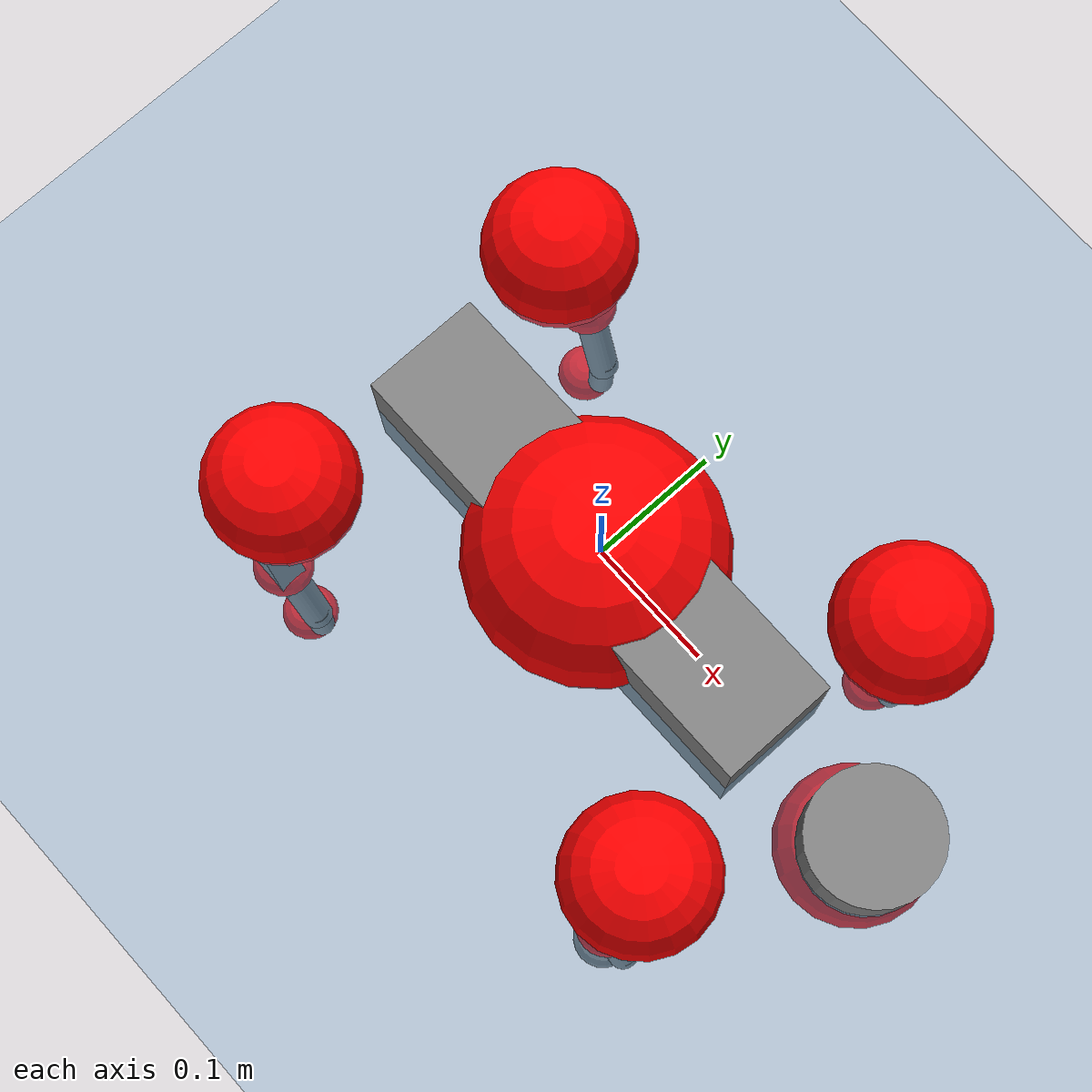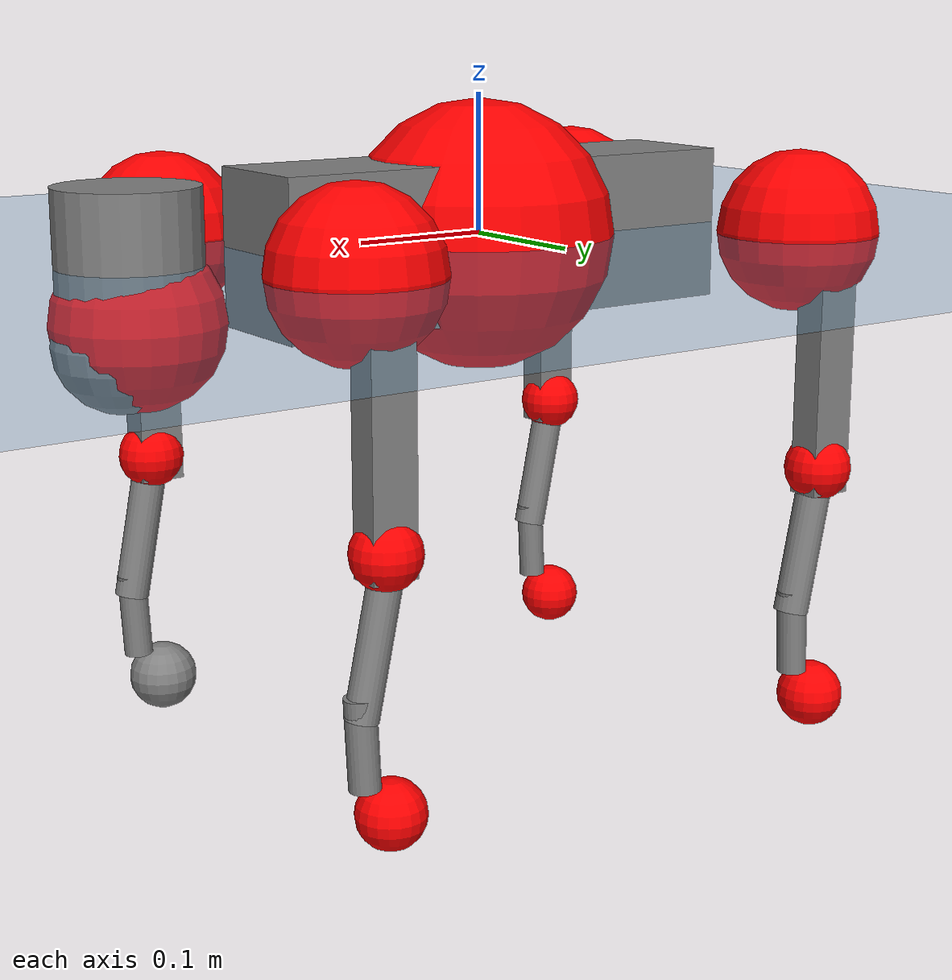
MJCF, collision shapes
<mujoco model="go2">
  <compiler angle="radian" assetdir="assets" balanceinertia="true" inertiafromgeom="false"/>

  <option timestep="0.005" density="1.2" viscosity="2e-05"/>

  <size nkey="1"/>

  <visual>
    <quality shadowsize="8192"/>
    <map shadowclip="0.5"/>
  </visual>

  <default>
    <default class="/">
      <geom contype="0" conaffinity="0" group="1" solref="-1000 -80"/>
      <site size="0.01 0.005 0.005" group="5"/>
      <general forcelimited="true" biastype="affine" gainprm="20" biasprm="0 -20 -0.5"/>
      <default class="go2">
        <joint armature="0.01" damping="0.01" frictionloss="0.2"/>
        <geom condim="1" margin="0.001"/>
        <default class="visual">
          <geom type="mesh" group="2"/>
        </default>
        <default class="collision">
          <geom group="3"/>
          <default class="foot">
            <geom size="0.022 0 0" condim="6" priority="1" friction="0.8 0.02 0.01" solimp="0.015 1 0.022"/>
          </default>
        </default>
        <default class="reward_collision_sphere">
          <geom group="5" rgba="1 0 0 1"/>
        </default>
      </default>
    </default>
  </default>

  <asset>
    <texture type="skybox" colorspace="auto" name="//unnamed_texture_0" builtin="gradient" rgb1="0.95 0.95 0.95" rgb2="0.95 0.95 0.95" width="100" height="600"/>
    <texture type="2d" colorspace="auto" name="texplane" builtin="checker" rgb1="0.345 0.575 0.748" rgb2="0.345 0.575 0.748" markrgb="1 1 1" width="512" height="512"/>
    <material name="MatPlane" class="/" texture="texplane" texuniform="true" texrepeat="2 2" specular="0.9"/>
    <material name="metal" class="/" rgba="0.9 0.95 0.95 1"/>
    <material name="black" class="/" rgba="0 0 0 1"/>
    <material name="white" class="/"/>
    <material name="gray" class="/" rgba="0.671705 0.692426 0.77427 1"/>
    <mesh name="base_0" class="/" file="base_0.obj"/>
    <mesh name="base_1" class="/" file="base_1.obj"/>
    <mesh name="base_2" class="/" file="base_2.obj"/>
    <mesh name="base_3" class="/" file="base_3.obj"/>
    <mesh name="base_4" class="/" file="base_4.obj"/>
    <mesh name="hip_0" class="/" file="hip_0.obj"/>
    <mesh name="hip_1" class="/" file="hip_1.obj"/>
    <mesh name="thigh_0" class="/" file="thigh_0.obj"/>
    <mesh name="thigh_1" class="/" file="thigh_1.obj"/>
    <mesh name="thigh_mirror_0" class="/" file="thigh_mirror_0.obj"/>
    <mesh name="thigh_mirror_1" class="/" file="thigh_mirror_1.obj"/>
    <mesh name="calf_0" class="/" file="calf_0.obj"/>
    <mesh name="calf_1" class="/" file="calf_1.obj"/>
    <mesh name="calf_mirror_0" class="/" file="calf_mirror_0.obj"/>
    <mesh name="calf_mirror_1" class="/" file="calf_mirror_1.obj"/>
    <mesh name="foot" class="/" file="foot.obj"/>
  </asset>

  <worldbody>
    <geom name="floor" class="/" size="100 100 0.125" type="plane" group="0" material="MatPlane"/>
    <light name="toplight_shadow" class="/" pos="0 0 5" dir="0.0990148 0.0990148 -0.990148" type="directional" ambient="0.04 0.04 0.04" diffuse="0.55 0.55 0.55" specular="0.12 0.12 0.12"/>
    <light name="toplight_fill" class="/" pos="0 0 5" dir="0.0990148 0.0990148 -0.990148" type="directional" castshadow="false" ambient="0.04 0.04 0.04" diffuse="0.3 0.3 0.3" specular="0.08 0.08 0.08"/>
    <body name="trunk" childclass="go2" pos="-0.00219155 -0.00276531 -0.00106382" quat="0.999999 -0.00136407 0.000307099 -0.000114512">
      <inertial pos="0.018369 0.000543988 -0.00484107" quat="-0.00261884 0.71179 0.00205202 0.702385" mass="6.36947" diaginertia="0.0895633 0.176918 0.00971469"/>
      <joint name="//unnamed_joint_0" type="free" armature="0" damping="0" frictionloss="0"/>
      <geom name="//unnamed_geom_1" class="visual" material="black" mesh="base_0"/>
      <geom name="//unnamed_geom_2" class="visual" material="black" mesh="base_1"/>
      <geom name="//unnamed_geom_3" class="visual" material="black" mesh="base_2"/>
      <geom name="//unnamed_geom_4" class="visual" material="white" mesh="base_3"/>
      <geom name="//unnamed_geom_5" class="visual" material="gray" mesh="base_4"/>
      <geom name="trunk_1" class="collision" size="0.183198 0.0455318 0.0555147" type="box"/>
      <geom name="trunk_2" class="collision" size="0.0486971 0.0438274" pos="0.275332 0 0.00826978" type="cylinder"/>
      <geom name="trunk_3" class="collision" size="0.0457752" pos="0.28306 0 -0.0496187"/>
      <geom name="//unnamed_geom_9" class="reward_collision_sphere" size="0.0973941"/>
      <geom name="//unnamed_geom_10" class="reward_collision_sphere" size="0.0584365" pos="0.270501 0 -0.037214"/>
      <site name="imu" pos="-0.0236028 0.00402246 0.0354953" size="0.00973941"/>
      <camera name="track" pos="0 -2.25754 0" quat="0.707107 0.707107 0 0" mode="trackcom"/>
      <camera name="ego_camera" pos="0.301416 0 0.037214" quat="-0.5 -0.5 0.5 0.5"/>
      <body name="FL_hip" pos="0.184052 0.0501576 0.00325802" quat="0.999999 -0.000219973 0.000809826 -0.000560525">
        <inertial pos="-0.00709799 0.000517538 -0.00232657" quat="0.4973 0.50019 0.505722 0.496737" mass="0.655853" diaginertia="0.000778451 0.00109462 0.000197091"/>
        <joint name="FL_hip_joint" pos="0 0 0" axis="0.99997 -0.00314779 -0.00707577" range="-1.0382 0.994792" armature="0.0111243" damping="0" frictionloss="0.207889"/>
        <geom name="//unnamed_geom_11" class="visual" material="metal" mesh="hip_0"/>
        <geom name="//unnamed_geom_12" class="visual" material="gray" mesh="hip_1"/>
        <geom name="//unnamed_geom_13" class="collision" size="0.0448013 0.0194788" pos="0 0.0903016 0" quat="0.707107 0.707107 0 0" type="cylinder"/>
        <geom name="//unnamed_geom_14" class="reward_collision_sphere" size="0.0584365" pos="0 0.0790139 0"/>
        <body name="FL_thigh" pos="-0.000999681 0.107503 0.00311437" quat="1 5.15168e-05 -0.00016769 1.821e-05">
          <inertial pos="-0.00147671 -0.0260717 -0.0244452" quat="0.827919 0.0862398 -0.0205392 0.553797" mass="1.07328" diaginertia="0.00508508 0.0107321 0.000337192"/>
          <joint name="FL_thigh_joint" pos="0 0 0" axis="0.0136017 0.999905 0.0023846" stiffness="0.00659049" range="-1.62372 3.54759" armature="0.011169" damping="0" frictionloss="0.213145"/>
          <geom name="//unnamed_geom_15" class="visual" material="metal" mesh="thigh_0"/>
          <geom name="//unnamed_geom_16" class="visual" material="gray" mesh="thigh_1"/>
          <geom name="//unnamed_geom_17" class="collision" size="0.103725 0.0119308 0.016557" pos="0 0 -0.0880732" quat="0.707107 0 0.707107 0" type="box"/>
          <body name="FL_calf" pos="-0.000500529 -0.000517579 -0.175896" quat="0.999999 -0.00118806 -0.000349184 -0.000197557">
            <inertial pos="0.00847585 0.00166541 -0.119591" quat="0.711303 0.0099604 0.00559386 0.702793" mass="0.222658" diaginertia="0.00124544 0.00274431 1.98383e-05"/>
            <joint name="FL_calf_joint" pos="0 0 0" axis="0.000278862 1 0.00026846" stiffness="0.00113034" range="-2.70089 -0.892824" armature="0.00855532" damping="0.00578215" frictionloss="0.205316"/>
            <geom name="//unnamed_geom_18" class="visual" material="gray" mesh="calf_0"/>
            <geom name="//unnamed_geom_19" class="visual" material="black" mesh="calf_1"/>
            <geom name="FL_calf0" class="collision" size="0.0116873 0.0584365" pos="0.00772861 0 -0.0496187" quat="0.994493 0 -0.104807 0" type="cylinder"/>
            <geom name="//unnamed_geom_21" class="collision" size="0.0107134 0.0316531" pos="0.0193215 0 -0.122393" quat="0.999688 0 0.0249974 0" type="cylinder"/>
            <geom name="//unnamed_geom_22" class="visual" pos="0 0 -0.176146" quat="1 0 0 0" material="black" mesh="foot"/>
            <geom name="FL_foot" class="foot" size="0.0188852" pos="-0.00193215 0 -0.176146"/>
            <geom name="//unnamed_geom_24" class="reward_collision_sphere" size="0.0243485"/>
            <geom name="//unnamed_geom_25" class="reward_collision_sphere" size="0.0243485" pos="-0.00193215 0 -0.176146"/>
            <site name="FL_foot" class="foot" pos="-0.00193215 0 -0.176146" size="0.00973941"/>
          </body>
        </body>
      </body>
      <body name="FR_hip" pos="0.187955 -0.0499783 0.0013316" quat="1 6.64567e-05 0.000342957 0.000298301">
        <inertial pos="-0.00232488 -0.00237491 -4.31937e-05" quat="0.498318 0.50581 0.498353 0.497474" mass="0.658209" diaginertia="0.000779515 0.00113887 0.000185834"/>
        <joint name="FR_hip_joint" pos="0 0 0" axis="0.999996 0.00248269 0.00106162" range="-1.00283 1.04973" armature="0.00881463" damping="0.0110545" frictionloss="0.215509"/>
        <geom name="//unnamed_geom_26" class="visual" pos="0 2.62908e-09 1.12767e-07" quat="4.63268e-05 1 0 0" material="metal" mesh="hip_0"/>
        <geom name="//unnamed_geom_27" class="visual" pos="0 4.26206e-09 -2.78915e-07" quat="4.63268e-05 1 0 0" material="gray" mesh="hip_1"/>
        <geom name="//unnamed_geom_28" class="collision" size="0.0448013 0.0194788" pos="0 -0.0903016 0" quat="0.707107 0.707107 0 0" type="cylinder"/>
        <geom name="//unnamed_geom_29" class="reward_collision_sphere" size="0.0584365" pos="0 -0.0790139 0"/>
        <body name="FR_thigh" pos="0.000285961 -0.107236 0.00291459" quat="0.999999 1.86514e-05 0.00116815 0.00053389">
          <inertial pos="-0.00626346 0.0233387 -0.0270238" quat="0.547622 -0.017865 0.0855789 0.832146" mass="1.03055" diaginertia="0.00498723 0.0104051 0.00032469"/>
          <joint name="FR_thigh_joint" pos="0 0 0" axis="0.00680964 -0.999969 -0.00393393" stiffness="0.0038082" range="-3.49369 1.5467" armature="0.00977655" damping="0.0181512" frictionloss="0.208431"/>
          <geom name="//unnamed_geom_30" class="visual" material="metal" mesh="thigh_mirror_0"/>
          <geom name="//unnamed_geom_31" class="visual" material="gray" mesh="thigh_mirror_1"/>
          <geom name="//unnamed_geom_32" class="collision" size="0.103725 0.0119308 0.016557" pos="0 0 -0.0880732" quat="0.707107 0 0.707107 0" type="box"/>
          <body name="FR_calf" pos="0.00247302 -0.00208459 -0.174477" quat="1 3.11396e-05 -3.16885e-06 4.06824e-05">
            <inertial pos="0.00815868 0.00118934 -0.117307" quat="0.703998 0.00013481 0.00405039 0.710191" mass="0.230266" diaginertia="0.00134181 0.00267813 2.12221e-05"/>
            <joint name="FR_calf_joint" pos="0 0 0" axis="0.00790423 -0.999958 0.00458714" range="0.833693 2.73356" armature="0.00951032" damping="0.0211295" frictionloss="0.191579"/>
            <geom name="//unnamed_geom_33" class="visual" material="gray" mesh="calf_mirror_0"/>
            <geom name="//unnamed_geom_34" class="visual" material="black" mesh="calf_mirror_1"/>
            <geom name="FR_calf0" class="collision" size="0.0126612 0.0584365" pos="0.00966076 0 -0.0496187" quat="0.995004 0 -0.0998334 0" type="cylinder"/>
            <geom name="//unnamed_geom_36" class="collision" size="0.0107134 0.0316531" pos="0.0193215 0 -0.122393" quat="0.999688 0 0.0249974 0" type="cylinder"/>
            <geom name="//unnamed_geom_37" class="visual" pos="0 0 -0.176146" quat="1 0 0 0" material="black" mesh="foot"/>
            <geom name="FR_foot" class="foot" size="0.0255553" pos="-0.00193215 0 -0.176146"/>
            <geom name="//unnamed_geom_39" class="reward_collision_sphere" size="0.0243485"/>
            <geom name="//unnamed_geom_40" class="reward_collision_sphere" size="0.0243485" pos="-0.00193215 0 -0.176146"/>
            <site name="FR_foot" class="foot" pos="-0.00193215 0 -0.176146" size="0.00973941"/>
          </body>
        </body>
      </body>
      <body name="RL_hip" pos="-0.187862 0.0534831 0.00276274" quat="1 0.000293704 0.000283241 -0.000504396">
        <inertial pos="0.00772858 0.00350294 -0.00113704" quat="0.505573 0.497577 0.497308 0.499499" mass="0.619764" diaginertia="0.000740166 0.00112667 0.000185593"/>
        <joint name="RL_hip_joint" pos="0 0 0" axis="-0.9998 -0.00572871 -0.019161" stiffness="0.0117111" range="-1.02719 1.0237" armature="0.00977551" damping="0.0100425" frictionloss="0.204261"/>
        <geom name="//unnamed_geom_41" class="visual" pos="-1.21177e-09 0 -2.37534e-07" quat="4.63268e-05 0 1 0" material="metal" mesh="hip_0"/>
        <geom name="//unnamed_geom_42" class="visual" pos="-1.96442e-09 0 -2.10659e-07" quat="4.63268e-05 0 1 0" material="gray" mesh="hip_1"/>
        <geom name="//unnamed_geom_43" class="collision" size="0.0448013 0.0194788" pos="0 0.0903016 0" quat="0.707107 0.707107 0 0" type="cylinder"/>
        <geom name="//unnamed_geom_44" class="reward_collision_sphere" size="0.0584365" pos="0 0.0790139 0"/>
        <body name="RL_thigh" pos="-0.00191169 0.109311 0.00264885" quat="0.999999 -0.000476741 -0.000648703 0.000719756">
          <inertial pos="-0.00385345 -0.0239348 -0.0261507" quat="0.831679 0.0748402 -0.0116217 0.550067" mass="1.02864" diaginertia="0.00501337 0.010337 0.000342426"/>
          <joint name="RL_thigh_joint" pos="0 0 0" axis="-0.0125642 0.999881 0.00893587" range="-0.501707 4.55345" armature="0.00855795" damping="0" frictionloss="0.188209"/>
          <geom name="//unnamed_geom_45" class="visual" material="metal" mesh="thigh_0"/>
          <geom name="//unnamed_geom_46" class="visual" material="gray" mesh="thigh_1"/>
          <geom name="//unnamed_geom_47" class="collision" size="0.103725 0.0119308 0.016557" pos="0 0 -0.0880732" quat="0.707107 0 0.707107 0" type="box"/>
          <body name="RL_calf" pos="-4.95885e-05 -0.00184645 -0.173661" quat="1 -9.29437e-05 0.00014678 -0.000282964">
            <inertial pos="0.00605286 -0.000632062 -0.114599" quat="0.711391 0.00276642 -0.00471292 0.702775" mass="0.222889" diaginertia="0.00125781 0.00269758 2.07749e-05"/>
            <joint name="RL_calf_joint" pos="0 0 0" axis="-0.00141403 0.999989 0.00455818" range="-2.7196 -0.835846" armature="0.00910893" damping="0" frictionloss="0.192323"/>
            <geom name="//unnamed_geom_48" class="visual" material="gray" mesh="calf_0"/>
            <geom name="//unnamed_geom_49" class="visual" material="black" mesh="calf_1"/>
            <geom name="RL_calf0" class="collision" size="0.0126612 0.0584365" pos="0.00966076 0 -0.0496187" quat="0.995004 0 -0.0998334 0" type="cylinder"/>
            <geom name="//unnamed_geom_51" class="collision" size="0.0107134 0.0316531" pos="0.0193215 0 -0.122393" quat="0.999688 0 0.0249974 0" type="cylinder"/>
            <geom name="//unnamed_geom_52" class="visual" pos="0 0 -0.176146" quat="1 0 0 0" material="black" mesh="foot"/>
            <geom name="RL_foot" class="foot" size="0.0216048" pos="-0.00193215 0 -0.176146"/>
            <geom name="//unnamed_geom_54" class="reward_collision_sphere" size="0.0243485"/>
            <geom name="//unnamed_geom_55" class="reward_collision_sphere" size="0.0243485" pos="-0.00193215 0 -0.176146"/>
            <site name="RL_foot" class="foot" pos="-0.00193215 0 -0.176146" size="0.00973941"/>
          </body>
        </body>
      </body>
      <body name="RR_hip" pos="-0.186295 -0.0540041 0.00170232" quat="0.999999 -0.000290573 -0.00140626 -0.000493019">
        <inertial pos="0.00558672 0.000714258 -0.000740726" quat="0.490185 0.501139 0.495657 0.51274" mass="0.624653" diaginertia="0.000761759 0.00112122 0.000181997"/>
        <joint name="RR_hip_joint" pos="0 0 0" axis="-0.999973 -0.00702258 -0.00192701" stiffness="0.0074613" range="-1.06677 1.04432" armature="0.0109597" damping="0.0158356" frictionloss="0.168683"/>
        <geom name="//unnamed_geom_56" class="visual" pos="1.2174e-09 2.62908e-09 -3.50301e-07" quat="2.14617e-09 4.63268e-05 4.63268e-05 -1" material="metal" mesh="hip_0"/>
        <geom name="//unnamed_geom_57" class="visual" pos="1.95049e-09 4.26206e-09 6.82563e-08" quat="2.14617e-09 4.63268e-05 4.63268e-05 -1" material="gray" mesh="hip_1"/>
        <geom name="//unnamed_geom_58" class="collision" size="0.0448013 0.0194788" pos="0 -0.0903016 0" quat="0.707107 0.707107 0 0" type="cylinder"/>
        <geom name="//unnamed_geom_59" class="reward_collision_sphere" size="0.0584365" pos="0 -0.0790139 0"/>
        <body name="RR_thigh" pos="-0.00147613 -0.10901 -0.00274809" quat="0.999999 -0.000672629 0.000431531 0.000623559">
          <inertial pos="-0.00324667 0.0234906 -0.0272859" quat="0.551719 -0.0212405 0.0847461 0.829442" mass="1.02875" diaginertia="0.00487146 0.0105349 0.000325522"/>
          <joint name="RR_thigh_joint" pos="0 0 0" axis="0.00297151 -0.999995 0.00135449" range="-4.5873 0.574986" armature="0.0107783" damping="0.0149946" frictionloss="0.196307"/>
          <geom name="//unnamed_geom_60" class="visual" material="metal" mesh="thigh_mirror_0"/>
          <geom name="//unnamed_geom_61" class="visual" material="gray" mesh="thigh_mirror_1"/>
          <geom name="//unnamed_geom_62" class="collision" size="0.103725 0.0119308 0.016557" pos="0 0 -0.0880732" quat="0.707107 0 0.707107 0" type="box"/>
          <body name="RR_calf" pos="-0.00154026 0.00220681 -0.175571" quat="1 0.00057551 -4.61316e-05 0.000454244">
            <inertial pos="0.00756468 0.000419832 -0.114961" quat="0.700246 -0.00246516 -0.000178269 0.713898" mass="0.222214" diaginertia="0.00125566 0.00252149 2.06998e-05"/>
            <joint name="RR_calf_joint" pos="0 0 0" axis="-0.00611162 -0.999941 0.00895416" range="0.893817 2.75395" armature="0.00822407" damping="0.00952908" frictionloss="0.193666"/>
            <geom name="//unnamed_geom_63" class="visual" material="gray" mesh="calf_mirror_0"/>
            <geom name="//unnamed_geom_64" class="visual" material="black" mesh="calf_mirror_1"/>
            <geom name="RR_calf0" class="collision" size="0.0126612 0.0584365" pos="0.00966076 0 -0.0496187" quat="0.995004 0 -0.0998334 0" type="cylinder"/>
            <geom name="//unnamed_geom_66" class="collision" size="0.0107134 0.0316531" pos="0.0193215 0 -0.122393" quat="0.999688 0 0.0249974 0" type="cylinder"/>
            <geom name="//unnamed_geom_67" class="visual" pos="0 0 -0.176146" quat="1 0 0 0" material="black" mesh="foot"/>
            <geom name="RR_foot" class="foot" size="0.0231192" pos="-0.00193215 0 -0.176146"/>
            <geom name="//unnamed_geom_69" class="reward_collision_sphere" size="0.0243485"/>
            <geom name="//unnamed_geom_70" class="reward_collision_sphere" size="0.0243485" pos="-0.00193215 0 -0.176146"/>
            <site name="RR_foot" class="foot" pos="-0.00193215 0 -0.176146" size="0.00973941"/>
          </body>
        </body>
      </body>
    </body>
  </worldbody>

  <contact>
    <pair class="/" geom1="floor" geom2="FL_foot" name="//unnamed_contact_0"/>
    <pair class="/" geom1="floor" geom2="FR_foot" name="//unnamed_contact_1"/>
    <pair class="/" geom1="floor" geom2="RL_foot" name="//unnamed_contact_2"/>
    <pair class="/" geom1="floor" geom2="RR_foot" name="//unnamed_contact_3"/>
  </contact>

  <actuator>
    <general name="FL_hip" class="/" joint="FL_hip_joint" forcerange="-23.6385 23.6385" gainprm="19.5999" biasprm="0 -19.5999 -0.489677"/>
    <general name="FL_thigh" class="/" joint="FL_thigh_joint" forcerange="-21.3452 21.3452" gainprm="19.5999" biasprm="0 -19.5999 -0.489677"/>
    <general name="FL_calf" class="/" joint="FL_calf_joint" forcerange="-43.5635 43.5635" gainprm="19.5999" biasprm="0 -19.5999 -0.489677"/>
    <general name="FR_hip" class="/" joint="FR_hip_joint" forcerange="-24.5415 24.5415" gainprm="19.5999" biasprm="0 -19.5999 -0.489677"/>
    <general name="FR_thigh" class="/" joint="FR_thigh_joint" forcerange="-23.3752 23.3752" gainprm="19.5999" biasprm="0 -19.5999 -0.489677"/>
    <general name="FR_calf" class="/" joint="FR_calf_joint" forcerange="-39.2905 39.2905" gainprm="19.5999" biasprm="0 -19.5999 -0.489677"/>
    <general name="RL_hip" class="/" joint="RL_hip_joint" forcerange="-23.9369 23.9369" gainprm="19.5999" biasprm="0 -19.5999 -0.489677"/>
    <general name="RL_thigh" class="/" joint="RL_thigh_joint" forcerange="-23.9172 23.9172" gainprm="19.5999" biasprm="0 -19.5999 -0.489677"/>
    <general name="RL_calf" class="/" joint="RL_calf_joint" forcerange="-42.1395 42.1395" gainprm="19.5999" biasprm="0 -19.5999 -0.489677"/>
    <general name="RR_hip" class="/" joint="RR_hip_joint" forcerange="-22.183 22.183" gainprm="19.5999" biasprm="0 -19.5999 -0.489677"/>
    <general name="RR_thigh" class="/" joint="RR_thigh_joint" forcerange="-22.8551 22.8551" gainprm="19.5999" biasprm="0 -19.5999 -0.489677"/>
    <general name="RR_calf" class="/" joint="RR_calf_joint" forcerange="-48.38 48.38" gainprm="19.5999" biasprm="0 -19.5999 -0.489677"/>
  </actuator>

  <sensor>
    <gyro site="imu" name="imu_angular_velocity"/>
    <velocimeter site="imu" name="imu_linear_velocity"/>
    <framelinvel objtype="site" objname="FL_foot" name="FL_foot_global_linear_velocity"/>
    <framelinvel objtype="site" objname="FR_foot" name="FR_foot_global_linear_velocity"/>
    <framelinvel objtype="site" objname="RL_foot" name="RL_foot_global_linear_velocity"/>
    <framelinvel objtype="site" objname="RR_foot" name="RR_foot_global_linear_velocity"/>
  </sensor>

  <keyframe>
    <key name="home" qpos="0 0 0.325 1 0 0 0 0.1 0.8 -1.5 -0.1 -0.8 1.5 -0.1 0.8 -1.5 0.1 -0.8 1.5"/>
  </keyframe>
</mujoco>
